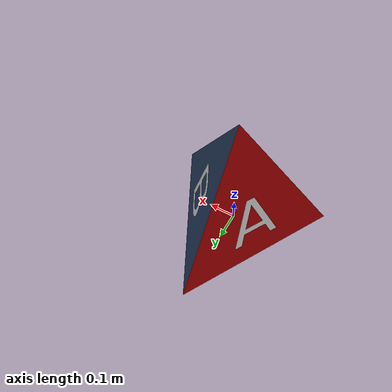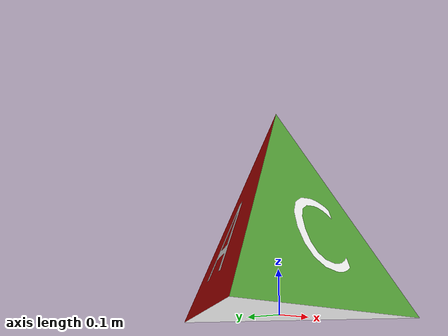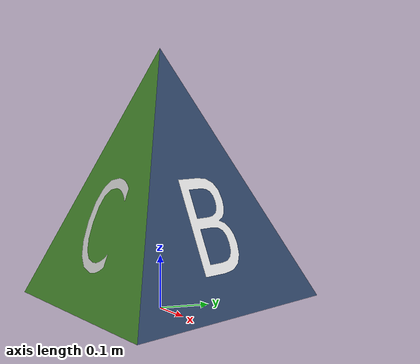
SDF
<?xml version="1.0"?>
<sdf version="1.6">
  <model name="teknofest_tetra">
    <static>true</static>
    <pose>0 0 0 0 0 0</pose>
    <link name="tetra">
      <pose>0 0 0 0 0 0</pose>

      <!-- Bounding box, not the solid: the faces are single triangles (no
           volume to collide with) and this prop is only ever looked at. -->
      <collision name="body">
        <pose>0 0 0.245 0 0 0</pose>
        <geometry><box><size>0.6 0.52 0.49</size></box></geometry>
      </collision>

      <visual name="face_red">
        <geometry>
          <mesh><uri>model://teknofest_tetra/meshes/tetra_red.dae</uri></mesh>
        </geometry>
        <material>
          <ambient>0.28 0.008 0.007 1</ambient>
          <diffuse>0.800 0.024 0.020 1</diffuse>
          <specular>0.05 0.05 0.05 1</specular>
        </material>
      </visual>
      <visual name="face_green">
        <geometry>
          <mesh><uri>model://teknofest_tetra/meshes/tetra_green.dae</uri></mesh>
        </geometry>
        <material>
          <ambient>0.119 0.228 0.078 1</ambient>
          <diffuse>0.341 0.651 0.224 1</diffuse>
          <specular>0.05 0.05 0.05 1</specular>
        </material>
      </visual>
      <visual name="face_blue">
        <geometry>
          <mesh><uri>model://teknofest_tetra/meshes/tetra_blue.dae</uri></mesh>
        </geometry>
        <material>
          <ambient>0.073 0.106 0.158 1</ambient>
          <diffuse>0.208 0.302 0.451 1</diffuse>
          <specular>0.05 0.05 0.05 1</specular>
        </material>
      </visual>
      <visual name="face_white">
        <geometry>
          <mesh><uri>model://teknofest_tetra/meshes/tetra_white.dae</uri></mesh>
        </geometry>
        <material>
          <ambient>0.35 0.35 0.35 1</ambient>
          <diffuse>1.0 1.0 1.0 1</diffuse>
          <specular>0.05 0.05 0.05 1</specular>
        </material>
      </visual>
      <visual name="letters">
        <geometry>
          <mesh><uri>model://teknofest_tetra/meshes/tetra_letters.dae</uri></mesh>
        </geometry>
        <material>
          <ambient>0.35 0.35 0.35 1</ambient>
          <diffuse>1.0 1.0 1.0 1</diffuse>
          <specular>0.05 0.05 0.05 1</specular>
        </material>
      </visual>
    </link>
  </model>
</sdf>
